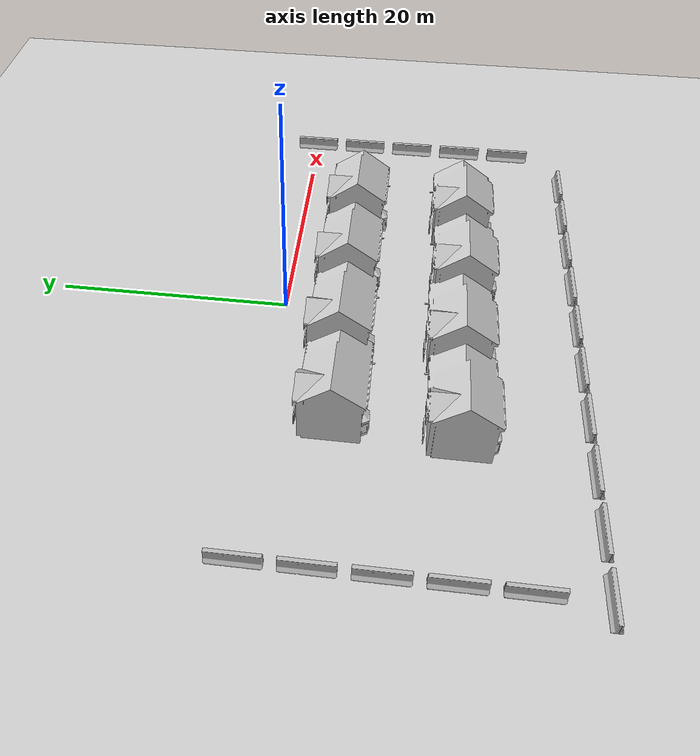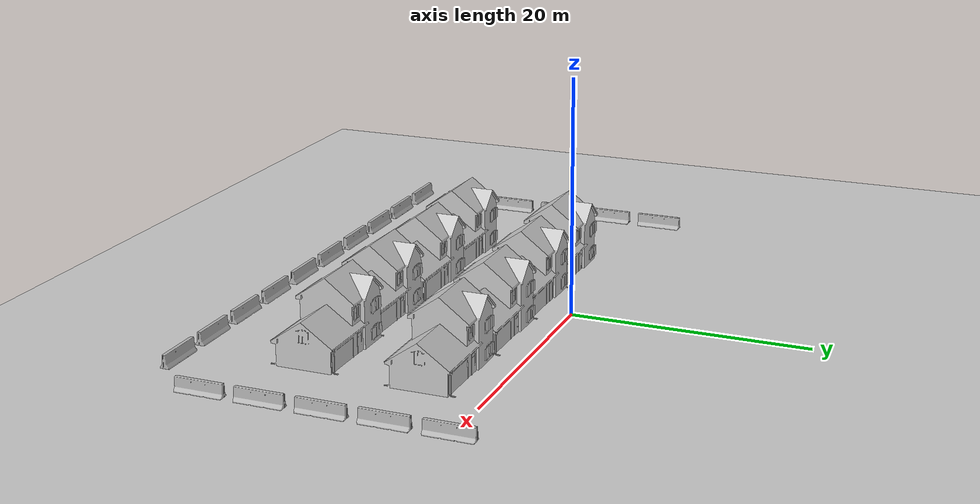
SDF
<sdf version="1.6">
 <world name="default">
  <model name="ground_plane">
   <static>1</static>
   <link name="link">
    <collision name="collision">
     <geometry><plane><normal>0 0 1</normal><size>100 100</size></plane></geometry>
     <surface><friction><ode><mu>100</mu><mu2>50</mu2></ode></friction></surface>
    </collision>
    <visual name="visual">
     <cast_shadows>0</cast_shadows>
     <geometry><plane><normal>0 0 1</normal><size>100 100</size></plane></geometry>
     <material>
      <script><uri>file://media/materials/scripts/gazebo.material</uri><name>Gazebo/Grey</name></script>
     </material>
    </visual>
   </link>
  </model>
  <model name="b1">
   <static>1</static>
   <link name="link">
    <visual name="visual">
     <geometry>
      <mesh><uri>model://jersey_barrier/meshes/jersey_barrier.dae</uri><scale>1 1 1</scale></mesh>
     </geometry>
    </visual>
    <collision name="upright">
     <pose>0 0 0.5715 0 -0 0</pose>
     <geometry><box><size>4.06542 0.3063 1.143</size></box></geometry>
    </collision>
    <collision name="base">
     <pose>0 0 0.032258 0 -0 0</pose>
     <geometry><box><size>4.06542 0.8107 0.064516</size></box></geometry>
    </collision>
    <collision name="base2">
     <pose>0 0 0.1 0 -0 0</pose>
     <geometry><box><size>4.06542 0.65 0.1</size></box></geometry>
    </collision>
    <collision name="base3">
     <pose>0 0 0.2 0 -0 0</pose>
     <geometry><box><size>4.06542 0.5 0.1</size></box></geometry>
    </collision>
    <collision name="left-angle">
     <pose>0 -0.224 0.2401 0.9 -0 0</pose>
     <geometry><box><size>4.06542 0.5 0.064516</size></box></geometry>
    </collision>
    <collision name="right-angle">
     <pose>0 0.224 0.2401 -0.9 0 0</pose>
     <geometry><box><size>4.06542 0.5 0.064516</size></box></geometry>
    </collision>
   </link>
   <pose>-25 -25 0 0 -0 0</pose>
  </model>
  <model name="b2">
   <static>1</static>
   <link name="link">
    <visual name="visual">
     <geometry>
      <mesh><uri>model://jersey_barrier/meshes/jersey_barrier.dae</uri><scale>1 1 1</scale></mesh>
     </geometry>
    </visual>
    <collision name="upright">
     <pose>0 0 0.5715 0 -0 0</pose>
     <geometry><box><size>4.06542 0.3063 1.143</size></box></geometry>
    </collision>
    <collision name="base">
     <pose>0 0 0.032258 0 -0 0</pose>
     <geometry><box><size>4.06542 0.8107 0.064516</size></box></geometry>
    </collision>
    <collision name="base2">
     <pose>0 0 0.1 0 -0 0</pose>
     <geometry><box><size>4.06542 0.65 0.1</size></box></geometry>
    </collision>
    <collision name="base3">
     <pose>0 0 0.2 0 -0 0</pose>
     <geometry><box><size>4.06542 0.5 0.1</size></box></geometry>
    </collision>
    <collision name="left-angle">
     <pose>0 -0.224 0.2401 0.9 -0 0</pose>
     <geometry><box><size>4.06542 0.5 0.064516</size></box></geometry>
    </collision>
    <collision name="right-angle">
     <pose>0 0.224 0.2401 -0.9 0 0</pose>
     <geometry><box><size>4.06542 0.5 0.064516</size></box></geometry>
    </collision>
   </link>
   <pose>-20 -25 0 0 -0 0</pose>
  </model>
  <model name="b3">
   <static>1</static>
   <link name="link">
    <visual name="visual">
     <geometry>
      <mesh><uri>model://jersey_barrier/meshes/jersey_barrier.dae</uri><scale>1 1 1</scale></mesh>
     </geometry>
    </visual>
    <collision name="upright">
     <pose>0 0 0.5715 0 -0 0</pose>
     <geometry><box><size>4.06542 0.3063 1.143</size></box></geometry>
    </collision>
    <collision name="base">
     <pose>0 0 0.032258 0 -0 0</pose>
     <geometry><box><size>4.06542 0.8107 0.064516</size></box></geometry>
    </collision>
    <collision name="base2">
     <pose>0 0 0.1 0 -0 0</pose>
     <geometry><box><size>4.06542 0.65 0.1</size></box></geometry>
    </collision>
    <collision name="base3">
     <pose>0 0 0.2 0 -0 0</pose>
     <geometry><box><size>4.06542 0.5 0.1</size></box></geometry>
    </collision>
    <collision name="left-angle">
     <pose>0 -0.224 0.2401 0.9 -0 0</pose>
     <geometry><box><size>4.06542 0.5 0.064516</size></box></geometry>
    </collision>
    <collision name="right-angle">
     <pose>0 0.224 0.2401 -0.9 0 0</pose>
     <geometry><box><size>4.06542 0.5 0.064516</size></box></geometry>
    </collision>
   </link>
   <pose>-15 -25 0 0 -0 0</pose>
  </model>
  <model name="b4">
   <static>1</static>
   <link name="link">
    <visual name="visual">
     <geometry>
      <mesh><uri>model://jersey_barrier/meshes/jersey_barrier.dae</uri><scale>1 1 1</scale></mesh>
     </geometry>
    </visual>
    <collision name="upright">
     <pose>0 0 0.5715 0 -0 0</pose>
     <geometry><box><size>4.06542 0.3063 1.143</size></box></geometry>
    </collision>
    <collision name="base">
     <pose>0 0 0.032258 0 -0 0</pose>
     <geometry><box><size>4.06542 0.8107 0.064516</size></box></geometry>
    </collision>
    <collision name="base2">
     <pose>0 0 0.1 0 -0 0</pose>
     <geometry><box><size>4.06542 0.65 0.1</size></box></geometry>
    </collision>
    <collision name="base3">
     <pose>0 0 0.2 0 -0 0</pose>
     <geometry><box><size>4.06542 0.5 0.1</size></box></geometry>
    </collision>
    <collision name="left-angle">
     <pose>0 -0.224 0.2401 0.9 -0 0</pose>
     <geometry><box><size>4.06542 0.5 0.064516</size></box></geometry>
    </collision>
    <collision name="right-angle">
     <pose>0 0.224 0.2401 -0.9 0 0</pose>
     <geometry><box><size>4.06542 0.5 0.064516</size></box></geometry>
    </collision>
   </link>
   <pose>-10 -25 0 0 -0 0</pose>
  </model>
  <model name="b5">
   <static>1</static>
   <link name="link">
    <visual name="visual">
     <geometry>
      <mesh><uri>model://jersey_barrier/meshes/jersey_barrier.dae</uri><scale>1 1 1</scale></mesh>
     </geometry>
    </visual>
    <collision name="upright">
     <pose>0 0 0.5715 0 -0 0</pose>
     <geometry><box><size>4.06542 0.3063 1.143</size></box></geometry>
    </collision>
    <collision name="base">
     <pose>0 0 0.032258 0 -0 0</pose>
     <geometry><box><size>4.06542 0.8107 0.064516</size></box></geometry>
    </collision>
    <collision name="base2">
     <pose>0 0 0.1 0 -0 0</pose>
     <geometry><box><size>4.06542 0.65 0.1</size></box></geometry>
    </collision>
    <collision name="base3">
     <pose>0 0 0.2 0 -0 0</pose>
     <geometry><box><size>4.06542 0.5 0.1</size></box></geometry>
    </collision>
    <collision name="left-angle">
     <pose>0 -0.224 0.2401 0.9 -0 0</pose>
     <geometry><box><size>4.06542 0.5 0.064516</size></box></geometry>
    </collision>
    <collision name="right-angle">
     <pose>0 0.224 0.2401 -0.9 0 0</pose>
     <geometry><box><size>4.06542 0.5 0.064516</size></box></geometry>
    </collision>
   </link>
   <pose>-5 -25 0 0 -0 0</pose>
  </model>
  <model name="b6">
   <static>1</static>
   <link name="link">
    <visual name="visual">
     <geometry>
      <mesh><uri>model://jersey_barrier/meshes/jersey_barrier.dae</uri><scale>1 1 1</scale></mesh>
     </geometry>
    </visual>
    <collision name="upright">
     <pose>0 0 0.5715 0 -0 0</pose>
     <geometry><box><size>4.06542 0.3063 1.143</size></box></geometry>
    </collision>
    <collision name="base">
     <pose>0 0 0.032258 0 -0 0</pose>
     <geometry><box><size>4.06542 0.8107 0.064516</size></box></geometry>
    </collision>
    <collision name="base2">
     <pose>0 0 0.1 0 -0 0</pose>
     <geometry><box><size>4.06542 0.65 0.1</size></box></geometry>
    </collision>
    <collision name="base3">
     <pose>0 0 0.2 0 -0 0</pose>
     <geometry><box><size>4.06542 0.5 0.1</size></box></geometry>
    </collision>
    <collision name="left-angle">
     <pose>0 -0.224 0.2401 0.9 -0 0</pose>
     <geometry><box><size>4.06542 0.5 0.064516</size></box></geometry>
    </collision>
    <collision name="right-angle">
     <pose>0 0.224 0.2401 -0.9 0 0</pose>
     <geometry><box><size>4.06542 0.5 0.064516</size></box></geometry>
    </collision>
   </link>
   <pose>0 -25 0 0 -0 0</pose>
  </model>
  <model name="b7">
   <static>1</static>
   <link name="link">
    <visual name="visual">
     <geometry>
      <mesh><uri>model://jersey_barrier/meshes/jersey_barrier.dae</uri><scale>1 1 1</scale></mesh>
     </geometry>
    </visual>
    <collision name="upright">
     <pose>0 0 0.5715 0 -0 0</pose>
     <geometry><box><size>4.06542 0.3063 1.143</size></box></geometry>
    </collision>
    <collision name="base">
     <pose>0 0 0.032258 0 -0 0</pose>
     <geometry><box><size>4.06542 0.8107 0.064516</size></box></geometry>
    </collision>
    <collision name="base2">
     <pose>0 0 0.1 0 -0 0</pose>
     <geometry><box><size>4.06542 0.65 0.1</size></box></geometry>
    </collision>
    <collision name="base3">
     <pose>0 0 0.2 0 -0 0</pose>
     <geometry><box><size>4.06542 0.5 0.1</size></box></geometry>
    </collision>
    <collision name="left-angle">
     <pose>0 -0.224 0.2401 0.9 -0 0</pose>
     <geometry><box><size>4.06542 0.5 0.064516</size></box></geometry>
    </collision>
    <collision name="right-angle">
     <pose>0 0.224 0.2401 -0.9 0 0</pose>
     <geometry><box><size>4.06542 0.5 0.064516</size></box></geometry>
    </collision>
   </link>
   <pose>5 -25 0 0 -0 0</pose>
  </model>
  <model name="b8">
   <static>1</static>
   <link name="link">
    <visual name="visual">
     <geometry>
      <mesh><uri>model://jersey_barrier/meshes/jersey_barrier.dae</uri><scale>1 1 1</scale></mesh>
     </geometry>
    </visual>
    <collision name="upright">
     <pose>0 0 0.5715 0 -0 0</pose>
     <geometry><box><size>4.06542 0.3063 1.143</size></box></geometry>
    </collision>
    <collision name="base">
     <pose>0 0 0.032258 0 -0 0</pose>
     <geometry><box><size>4.06542 0.8107 0.064516</size></box></geometry>
    </collision>
    <collision name="base2">
     <pose>0 0 0.1 0 -0 0</pose>
     <geometry><box><size>4.06542 0.65 0.1</size></box></geometry>
    </collision>
    <collision name="base3">
     <pose>0 0 0.2 0 -0 0</pose>
     <geometry><box><size>4.06542 0.5 0.1</size></box></geometry>
    </collision>
    <collision name="left-angle">
     <pose>0 -0.224 0.2401 0.9 -0 0</pose>
     <geometry><box><size>4.06542 0.5 0.064516</size></box></geometry>
    </collision>
    <collision name="right-angle">
     <pose>0 0.224 0.2401 -0.9 0 0</pose>
     <geometry><box><size>4.06542 0.5 0.064516</size></box></geometry>
    </collision>
   </link>
   <pose>10 -25 0 0 -0 0</pose>
  </model>
  <model name="b9">
   <static>1</static>
   <link name="link">
    <visual name="visual">
     <geometry>
      <mesh><uri>model://jersey_barrier/meshes/jersey_barrier.dae</uri><scale>1 1 1</scale></mesh>
     </geometry>
    </visual>
    <collision name="upright">
     <pose>0 0 0.5715 0 -0 0</pose>
     <geometry><box><size>4.06542 0.3063 1.143</size></box></geometry>
    </collision>
    <collision name="base">
     <pose>0 0 0.032258 0 -0 0</pose>
     <geometry><box><size>4.06542 0.8107 0.064516</size></box></geometry>
    </collision>
    <collision name="base2">
     <pose>0 0 0.1 0 -0 0</pose>
     <geometry><box><size>4.06542 0.65 0.1</size></box></geometry>
    </collision>
    <collision name="base3">
     <pose>0 0 0.2 0 -0 0</pose>
     <geometry><box><size>4.06542 0.5 0.1</size></box></geometry>
    </collision>
    <collision name="left-angle">
     <pose>0 -0.224 0.2401 0.9 -0 0</pose>
     <geometry><box><size>4.06542 0.5 0.064516</size></box></geometry>
    </collision>
    <collision name="right-angle">
     <pose>0 0.224 0.2401 -0.9 0 0</pose>
     <geometry><box><size>4.06542 0.5 0.064516</size></box></geometry>
    </collision>
   </link>
   <pose>15 -25 0 0 -0 0</pose>
  </model>
  <model name="b10">
   <static>1</static>
   <link name="link">
    <visual name="visual">
     <geometry>
      <mesh><uri>model://jersey_barrier/meshes/jersey_barrier.dae</uri><scale>1 1 1</scale></mesh>
     </geometry>
    </visual>
    <collision name="upright">
     <pose>0 0 0.5715 0 -0 0</pose>
     <geometry><box><size>4.06542 0.3063 1.143</size></box></geometry>
    </collision>
    <collision name="base">
     <pose>0 0 0.032258 0 -0 0</pose>
     <geometry><box><size>4.06542 0.8107 0.064516</size></box></geometry>
    </collision>
    <collision name="base2">
     <pose>0 0 0.1 0 -0 0</pose>
     <geometry><box><size>4.06542 0.65 0.1</size></box></geometry>
    </collision>
    <collision name="base3">
     <pose>0 0 0.2 0 -0 0</pose>
     <geometry><box><size>4.06542 0.5 0.1</size></box></geometry>
    </collision>
    <collision name="left-angle">
     <pose>0 -0.224 0.2401 0.9 -0 0</pose>
     <geometry><box><size>4.06542 0.5 0.064516</size></box></geometry>
    </collision>
    <collision name="right-angle">
     <pose>0 0.224 0.2401 -0.9 0 0</pose>
     <geometry><box><size>4.06542 0.5 0.064516</size></box></geometry>
    </collision>
   </link>
   <pose>20 -25 0 0 -0 0</pose>
  </model>
  <model name="b21">
   <static>1</static>
   <link name="link">
    <visual name="visual">
     <geometry>
      <mesh><uri>model://jersey_barrier/meshes/jersey_barrier.dae</uri><scale>1 1 1</scale></mesh>
     </geometry>
    </visual>
    <collision name="upright">
     <pose>0 0 0.5715 0 -0 0</pose>
     <geometry><box><size>4.06542 0.3063 1.143</size></box></geometry>
    </collision>
    <collision name="base">
     <pose>0 0 0.032258 0 -0 0</pose>
     <geometry><box><size>4.06542 0.8107 0.064516</size></box></geometry>
    </collision>
    <collision name="base2">
     <pose>0 0 0.1 0 -0 0</pose>
     <geometry><box><size>4.06542 0.65 0.1</size></box></geometry>
    </collision>
    <collision name="base3">
     <pose>0 0 0.2 0 -0 0</pose>
     <geometry><box><size>4.06542 0.5 0.1</size></box></geometry>
    </collision>
    <collision name="left-angle">
     <pose>0 -0.224 0.2401 0.9 -0 0</pose>
     <geometry><box><size>4.06542 0.5 0.064516</size></box></geometry>
    </collision>
    <collision name="right-angle">
     <pose>0 0.224 0.2401 -0.9 0 0</pose>
     <geometry><box><size>4.06542 0.5 0.064516</size></box></geometry>
    </collision>
   </link>
   <pose>-25 -20 0 0 0 -1.5708</pose>
  </model>
  <model name="b22">
   <static>1</static>
   <link name="link">
    <visual name="visual">
     <geometry>
      <mesh><uri>model://jersey_barrier/meshes/jersey_barrier.dae</uri><scale>1 1 1</scale></mesh>
     </geometry>
    </visual>
    <collision name="upright">
     <pose>0 0 0.5715 0 -0 0</pose>
     <geometry><box><size>4.06542 0.3063 1.143</size></box></geometry>
    </collision>
    <collision name="base">
     <pose>0 0 0.032258 0 -0 0</pose>
     <geometry><box><size>4.06542 0.8107 0.064516</size></box></geometry>
    </collision>
    <collision name="base2">
     <pose>0 0 0.1 0 -0 0</pose>
     <geometry><box><size>4.06542 0.65 0.1</size></box></geometry>
    </collision>
    <collision name="base3">
     <pose>0 0 0.2 0 -0 0</pose>
     <geometry><box><size>4.06542 0.5 0.1</size></box></geometry>
    </collision>
    <collision name="left-angle">
     <pose>0 -0.224 0.2401 0.9 -0 0</pose>
     <geometry><box><size>4.06542 0.5 0.064516</size></box></geometry>
    </collision>
    <collision name="right-angle">
     <pose>0 0.224 0.2401 -0.9 0 0</pose>
     <geometry><box><size>4.06542 0.5 0.064516</size></box></geometry>
    </collision>
   </link>
   <pose>-25 -15 0 0 0 -1.5708</pose>
  </model>
  <model name="b23">
   <static>1</static>
   <link name="link">
    <visual name="visual">
     <geometry>
      <mesh><uri>model://jersey_barrier/meshes/jersey_barrier.dae</uri><scale>1 1 1</scale></mesh>
     </geometry>
    </visual>
    <collision name="upright">
     <pose>0 0 0.5715 0 -0 0</pose>
     <geometry><box><size>4.06542 0.3063 1.143</size></box></geometry>
    </collision>
    <collision name="base">
     <pose>0 0 0.032258 0 -0 0</pose>
     <geometry><box><size>4.06542 0.8107 0.064516</size></box></geometry>
    </collision>
    <collision name="base2">
     <pose>0 0 0.1 0 -0 0</pose>
     <geometry><box><size>4.06542 0.65 0.1</size></box></geometry>
    </collision>
    <collision name="base3">
     <pose>0 0 0.2 0 -0 0</pose>
     <geometry><box><size>4.06542 0.5 0.1</size></box></geometry>
    </collision>
    <collision name="left-angle">
     <pose>0 -0.224 0.2401 0.9 -0 0</pose>
     <geometry><box><size>4.06542 0.5 0.064516</size></box></geometry>
    </collision>
    <collision name="right-angle">
     <pose>0 0.224 0.2401 -0.9 0 0</pose>
     <geometry><box><size>4.06542 0.5 0.064516</size></box></geometry>
    </collision>
   </link>
   <pose>-25 -10 0 0 0 -1.5708</pose>
  </model>
  <model name="b24">
   <static>1</static>
   <link name="link">
    <visual name="visual">
     <geometry>
      <mesh><uri>model://jersey_barrier/meshes/jersey_barrier.dae</uri><scale>1 1 1</scale></mesh>
     </geometry>
    </visual>
    <collision name="upright">
     <pose>0 0 0.5715 0 -0 0</pose>
     <geometry><box><size>4.06542 0.3063 1.143</size></box></geometry>
    </collision>
    <collision name="base">
     <pose>0 0 0.032258 0 -0 0</pose>
     <geometry><box><size>4.06542 0.8107 0.064516</size></box></geometry>
    </collision>
    <collision name="base2">
     <pose>0 0 0.1 0 -0 0</pose>
     <geometry><box><size>4.06542 0.65 0.1</size></box></geometry>
    </collision>
    <collision name="base3">
     <pose>0 0 0.2 0 -0 0</pose>
     <geometry><box><size>4.06542 0.5 0.1</size></box></geometry>
    </collision>
    <collision name="left-angle">
     <pose>0 -0.224 0.2401 0.9 -0 0</pose>
     <geometry><box><size>4.06542 0.5 0.064516</size></box></geometry>
    </collision>
    <collision name="right-angle">
     <pose>0 0.224 0.2401 -0.9 0 0</pose>
     <geometry><box><size>4.06542 0.5 0.064516</size></box></geometry>
    </collision>
   </link>
   <pose>-25 -5 0 0 0 -1.5708</pose>
  </model>
  <model name="b25">
   <static>1</static>
   <link name="link">
    <visual name="visual">
     <geometry>
      <mesh><uri>model://jersey_barrier/meshes/jersey_barrier.dae</uri><scale>1 1 1</scale></mesh>
     </geometry>
    </visual>
    <collision name="upright">
     <pose>0 0 0.5715 0 -0 0</pose>
     <geometry><box><size>4.06542 0.3063 1.143</size></box></geometry>
    </collision>
    <collision name="base">
     <pose>0 0 0.032258 0 -0 0</pose>
     <geometry><box><size>4.06542 0.8107 0.064516</size></box></geometry>
    </collision>
    <collision name="base2">
     <pose>0 0 0.1 0 -0 0</pose>
     <geometry><box><size>4.06542 0.65 0.1</size></box></geometry>
    </collision>
    <collision name="base3">
     <pose>0 0 0.2 0 -0 0</pose>
     <geometry><box><size>4.06542 0.5 0.1</size></box></geometry>
    </collision>
    <collision name="left-angle">
     <pose>0 -0.224 0.2401 0.9 -0 0</pose>
     <geometry><box><size>4.06542 0.5 0.064516</size></box></geometry>
    </collision>
    <collision name="right-angle">
     <pose>0 0.224 0.2401 -0.9 0 0</pose>
     <geometry><box><size>4.06542 0.5 0.064516</size></box></geometry>
    </collision>
   </link>
   <pose>-25 0 0 0 0 -1.5708</pose>
  </model>
  <model name="b31">
   <static>1</static>
   <link name="link">
    <visual name="visual">
     <geometry>
      <mesh><uri>model://jersey_barrier/meshes/jersey_barrier.dae</uri><scale>1 1 1</scale></mesh>
     </geometry>
    </visual>
    <collision name="upright">
     <pose>0 0 0.5715 0 -0 0</pose>
     <geometry><box><size>4.06542 0.3063 1.143</size></box></geometry>
    </collision>
    <collision name="base">
     <pose>0 0 0.032258 0 -0 0</pose>
     <geometry><box><size>4.06542 0.8107 0.064516</size></box></geometry>
    </collision>
    <collision name="base2">
     <pose>0 0 0.1 0 -0 0</pose>
     <geometry><box><size>4.06542 0.65 0.1</size></box></geometry>
    </collision>
    <collision name="base3">
     <pose>0 0 0.2 0 -0 0</pose>
     <geometry><box><size>4.06542 0.5 0.1</size></box></geometry>
    </collision>
    <collision name="left-angle">
     <pose>0 -0.224 0.2401 0.9 -0 0</pose>
     <geometry><box><size>4.06542 0.5 0.064516</size></box></geometry>
    </collision>
    <collision name="right-angle">
     <pose>0 0.224 0.2401 -0.9 0 0</pose>
     <geometry><box><size>4.06542 0.5 0.064516</size></box></geometry>
    </collision>
   </link>
   <pose>25 -20 0 0 0 -1.5708</pose>
  </model>
  <model name="b32">
   <static>1</static>
   <link name="link">
    <visual name="visual">
     <geometry>
      <mesh><uri>model://jersey_barrier/meshes/jersey_barrier.dae</uri><scale>1 1 1</scale></mesh>
     </geometry>
    </visual>
    <collision name="upright">
     <pose>0 0 0.5715 0 -0 0</pose>
     <geometry><box><size>4.06542 0.3063 1.143</size></box></geometry>
    </collision>
    <collision name="base">
     <pose>0 0 0.032258 0 -0 0</pose>
     <geometry><box><size>4.06542 0.8107 0.064516</size></box></geometry>
    </collision>
    <collision name="base2">
     <pose>0 0 0.1 0 -0 0</pose>
     <geometry><box><size>4.06542 0.65 0.1</size></box></geometry>
    </collision>
    <collision name="base3">
     <pose>0 0 0.2 0 -0 0</pose>
     <geometry><box><size>4.06542 0.5 0.1</size></box></geometry>
    </collision>
    <collision name="left-angle">
     <pose>0 -0.224 0.2401 0.9 -0 0</pose>
     <geometry><box><size>4.06542 0.5 0.064516</size></box></geometry>
    </collision>
    <collision name="right-angle">
     <pose>0 0.224 0.2401 -0.9 0 0</pose>
     <geometry><box><size>4.06542 0.5 0.064516</size></box></geometry>
    </collision>
   </link>
   <pose>25 -15 0 0 0 -1.5708</pose>
  </model>
  <model name="b33">
   <static>1</static>
   <link name="link">
    <visual name="visual">
     <geometry>
      <mesh><uri>model://jersey_barrier/meshes/jersey_barrier.dae</uri><scale>1 1 1</scale></mesh>
     </geometry>
    </visual>
    <collision name="upright">
     <pose>0 0 0.5715 0 -0 0</pose>
     <geometry><box><size>4.06542 0.3063 1.143</size></box></geometry>
    </collision>
    <collision name="base">
     <pose>0 0 0.032258 0 -0 0</pose>
     <geometry><box><size>4.06542 0.8107 0.064516</size></box></geometry>
    </collision>
    <collision name="base2">
     <pose>0 0 0.1 0 -0 0</pose>
     <geometry><box><size>4.06542 0.65 0.1</size></box></geometry>
    </collision>
    <collision name="base3">
     <pose>0 0 0.2 0 -0 0</pose>
     <geometry><box><size>4.06542 0.5 0.1</size></box></geometry>
    </collision>
    <collision name="left-angle">
     <pose>0 -0.224 0.2401 0.9 -0 0</pose>
     <geometry><box><size>4.06542 0.5 0.064516</size></box></geometry>
    </collision>
    <collision name="right-angle">
     <pose>0 0.224 0.2401 -0.9 0 0</pose>
     <geometry><box><size>4.06542 0.5 0.064516</size></box></geometry>
    </collision>
   </link>
   <pose>25 -10 0 0 0 -1.5708</pose>
  </model>
  <model name="b34">
   <static>1</static>
   <link name="link">
    <visual name="visual">
     <geometry>
      <mesh><uri>model://jersey_barrier/meshes/jersey_barrier.dae</uri><scale>1 1 1</scale></mesh>
     </geometry>
    </visual>
    <collision name="upright">
     <pose>0 0 0.5715 0 -0 0</pose>
     <geometry><box><size>4.06542 0.3063 1.143</size></box></geometry>
    </collision>
    <collision name="base">
     <pose>0 0 0.032258 0 -0 0</pose>
     <geometry><box><size>4.06542 0.8107 0.064516</size></box></geometry>
    </collision>
    <collision name="base2">
     <pose>0 0 0.1 0 -0 0</pose>
     <geometry><box><size>4.06542 0.65 0.1</size></box></geometry>
    </collision>
    <collision name="base3">
     <pose>0 0 0.2 0 -0 0</pose>
     <geometry><box><size>4.06542 0.5 0.1</size></box></geometry>
    </collision>
    <collision name="left-angle">
     <pose>0 -0.224 0.2401 0.9 -0 0</pose>
     <geometry><box><size>4.06542 0.5 0.064516</size></box></geometry>
    </collision>
    <collision name="right-angle">
     <pose>0 0.224 0.2401 -0.9 0 0</pose>
     <geometry><box><size>4.06542 0.5 0.064516</size></box></geometry>
    </collision>
   </link>
   <pose>25 -5 0 0 0 -1.5708</pose>
  </model>
  <model name="b35">
   <static>1</static>
   <link name="link">
    <visual name="visual">
     <geometry>
      <mesh><uri>model://jersey_barrier/meshes/jersey_barrier.dae</uri><scale>1 1 1</scale></mesh>
     </geometry>
    </visual>
    <collision name="upright">
     <pose>0 0 0.5715 0 -0 0</pose>
     <geometry><box><size>4.06542 0.3063 1.143</size></box></geometry>
    </collision>
    <collision name="base">
     <pose>0 0 0.032258 0 -0 0</pose>
     <geometry><box><size>4.06542 0.8107 0.064516</size></box></geometry>
    </collision>
    <collision name="base2">
     <pose>0 0 0.1 0 -0 0</pose>
     <geometry><box><size>4.06542 0.65 0.1</size></box></geometry>
    </collision>
    <collision name="base3">
     <pose>0 0 0.2 0 -0 0</pose>
     <geometry><box><size>4.06542 0.5 0.1</size></box></geometry>
    </collision>
    <collision name="left-angle">
     <pose>0 -0.224 0.2401 0.9 -0 0</pose>
     <geometry><box><size>4.06542 0.5 0.064516</size></box></geometry>
    </collision>
    <collision name="right-angle">
     <pose>0 0.224 0.2401 -0.9 0 0</pose>
     <geometry><box><size>4.06542 0.5 0.064516</size></box></geometry>
    </collision>
   </link>
   <pose>25 0 0 0 0 -1.5708</pose>
  </model>
  <model name="House 3">
   <static>1</static>
   <link name="link">
    <collision name="collision">
     <geometry><mesh><uri>model://house_3/meshes/house_3.dae</uri><scale>1 1 1</scale></mesh></geometry>
    </collision>
    <visual name="visual">
     <geometry><mesh><uri>model://house_3/meshes/house_3.dae</uri><scale>1 1 1</scale></mesh></geometry>
     <material>
      <script>
       <uri>model://house_3/materials/scripts</uri>
       <uri>model://house_3/materials/textures</uri>
       <name>House_3/Diffuse</name>
      </script>
     </material>
    </visual>
   </link>
   <pose>-10.2707 -15.158 0 0 -0 0</pose>
  </model>
  <model name="House 3_0">
   <static>1</static>
   <link name="link">
    <collision name="collision">
     <geometry><mesh><uri>model://house_3/meshes/house_3.dae</uri><scale>1 1 1</scale></mesh></geometry>
    </collision>
    <visual name="visual">
     <geometry><mesh><uri>model://house_3/meshes/house_3.dae</uri><scale>1 1 1</scale></mesh></geometry>
     <material>
      <script>
       <uri>model://house_3/materials/scripts</uri>
       <uri>model://house_3/materials/textures</uri>
       <name>House_3/Diffuse</name>
      </script>
     </material>
    </visual>
   </link>
   <pose>-2.00955 -14.9639 0 0 -0 0</pose>
  </model>
  <model name="House 3_0_clone">
   <static>1</static>
   <link name="link">
    <collision name="collision">
     <geometry><mesh><uri>model://house_3/meshes/house_3.dae</uri><scale>1 1 1</scale></mesh></geometry>
    </collision>
    <visual name="visual">
     <geometry><mesh><uri>model://house_3/meshes/house_3.dae</uri><scale>1 1 1</scale></mesh></geometry>
     <material>
      <script>
       <uri>model://house_3/materials/scripts</uri>
       <uri>model://house_3/materials/textures</uri>
       <name>House_3/Diffuse</name>
      </script>
     </material>
    </visual>
   </link>
   <pose>6.22504 -15.257 0 0 -0 0</pose>
  </model>
  <model name="House 3_0_clone_clone_4_clone_1">
   <static>1</static>
   <link name="link">
    <collision name="collision">
     <geometry><mesh><uri>model://house_3/meshes/house_3.dae</uri><scale>1 1 1</scale></mesh></geometry>
    </collision>
    <visual name="visual">
     <geometry><mesh><uri>model://house_3/meshes/house_3.dae</uri><scale>1 1 1</scale></mesh></geometry>
     <material>
      <script>
       <uri>model://house_3/materials/scripts</uri>
       <uri>model://house_3/materials/textures</uri>
       <name>House_3/Diffuse</name>
      </script>
     </material>
    </visual>
   </link>
   <pose>15.0267 -5.19388 0 0 -0 0</pose>
  </model>
  <model name="House 3_0_clone_clone_4_clone_2">
   <static>1</static>
   <link name="link">
    <collision name="collision">
     <geometry><mesh><uri>model://house_3/meshes/house_3.dae</uri><scale>1 1 1</scale></mesh></geometry>
    </collision>
    <visual name="visual">
     <geometry><mesh><uri>model://house_3/meshes/house_3.dae</uri><scale>1 1 1</scale></mesh></geometry>
     <material>
      <script>
       <uri>model://house_3/materials/scripts</uri>
       <uri>model://house_3/materials/textures</uri>
       <name>House_3/Diffuse</name>
      </script>
     </material>
    </visual>
   </link>
   <pose>6.57814 -5.07438 0 0 -0 0</pose>
  </model>
  <model name="House 3_0_clone_clone_4_clone_3">
   <static>1</static>
   <link name="link">
    <collision name="collision">
     <geometry><mesh><uri>model://house_3/meshes/house_3.dae</uri><scale>1 1 1</scale></mesh></geometry>
    </collision>
    <visual name="visual">
     <geometry><mesh><uri>model://house_3/meshes/house_3.dae</uri><scale>1 1 1</scale></mesh></geometry>
     <material>
      <script>
       <uri>model://house_3/materials/scripts</uri>
       <uri>model://house_3/materials/textures</uri>
       <name>House_3/Diffuse</name>
      </script>
     </material>
    </visual>
   </link>
   <pose>-1.70521 -5.14041 0 0 -0 0</pose>
  </model>
  <model name="House 3_0_clone_clone_4_clone_4">
   <static>1</static>
   <link name="link">
    <collision name="collision">
     <geometry><mesh><uri>model://house_3/meshes/house_3.dae</uri><scale>1 1 1</scale></mesh></geometry>
    </collision>
    <visual name="visual">
     <geometry><mesh><uri>model://house_3/meshes/house_3.dae</uri><scale>1 1 1</scale></mesh></geometry>
     <material>
      <script>
       <uri>model://house_3/materials/scripts</uri>
       <uri>model://house_3/materials/textures</uri>
       <name>House_3/Diffuse</name>
      </script>
     </material>
    </visual>
   </link>
   <pose>-9.63244 -5.32866 0 0 -0 0</pose>
  </model>
  <model name="House 3_0_clone_clone_4_clone_5">
   <static>1</static>
   <link name="link">
    <collision name="collision">
     <geometry><mesh><uri>model://house_3/meshes/house_3.dae</uri><scale>1 1 1</scale></mesh></geometry>
    </collision>
    <visual name="visual">
     <geometry><mesh><uri>model://house_3/meshes/house_3.dae</uri><scale>1 1 1</scale></mesh></geometry>
     <material>
      <script>
       <uri>model://house_3/materials/scripts</uri>
       <uri>model://house_3/materials/textures</uri>
       <name>House_3/Diffuse</name>
      </script>
     </material>
    </visual>
   </link>
   <pose>14.483 -15.033 0 0 -0 0</pose>
  </model>
 </world>
</sdf>
